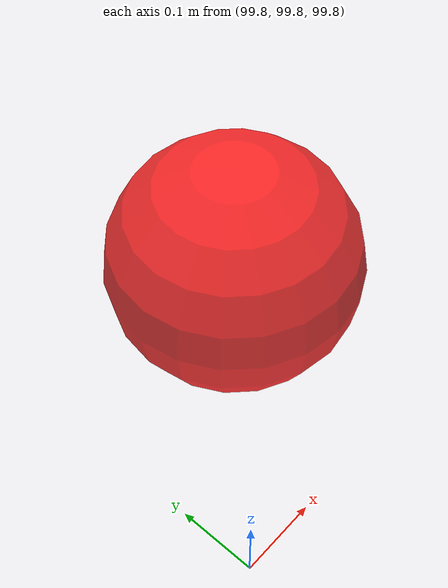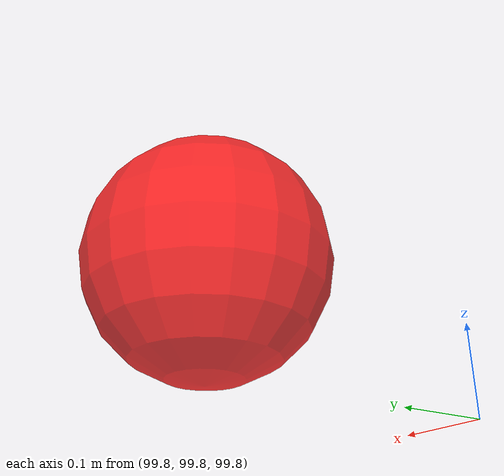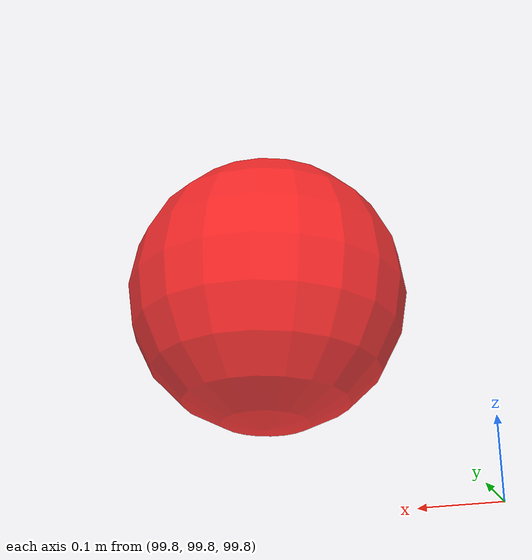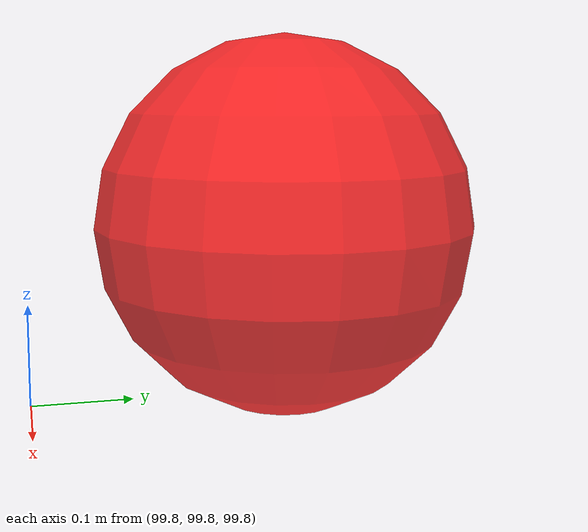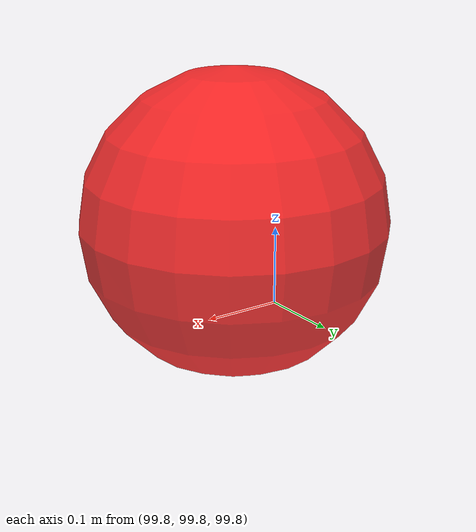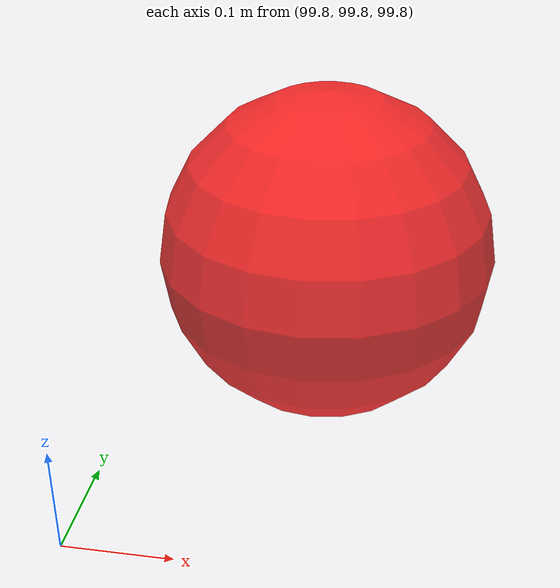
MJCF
<mujoco model="projectile_ball">
    <worldbody>
        <body name="projectile_ball" pos="100 100 100">
            <freejoint name="projectile_ball_freejoint"/>
            <geom name="projectile_ball_geom"
                  type="sphere"
                  size="0.15"
                  mass="15"
                  rgba="1 0 0 0.8"
                  contype="1"
                  conaffinity="1"/>
        </body>
    </worldbody>
</mujoco>
